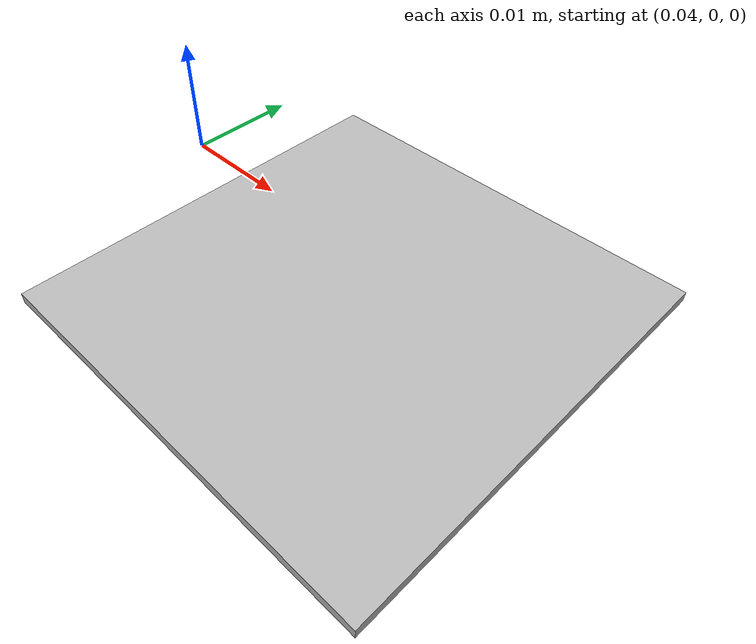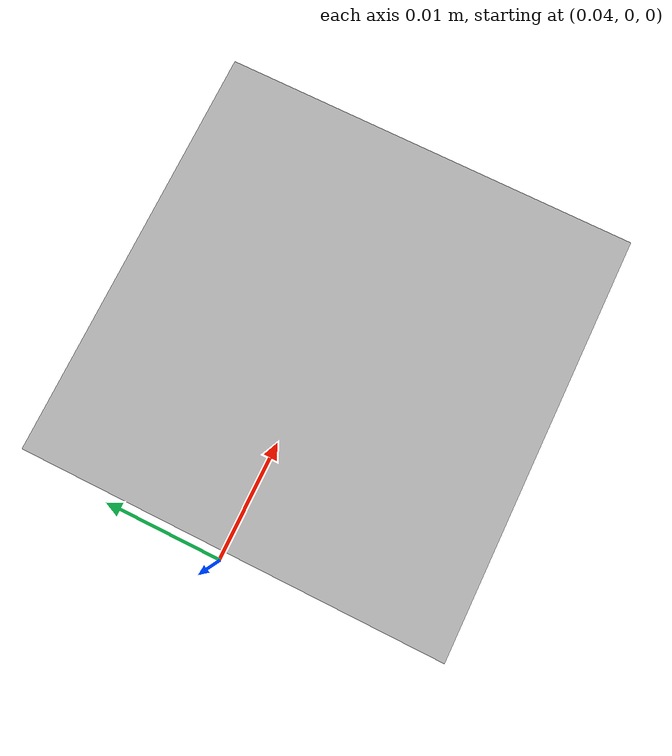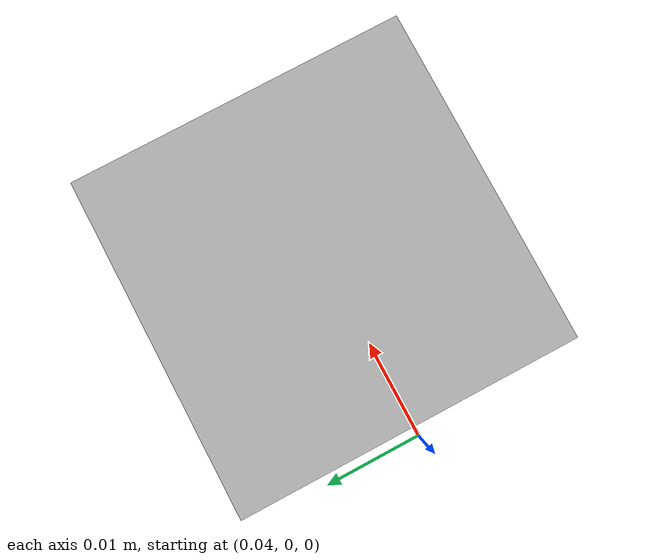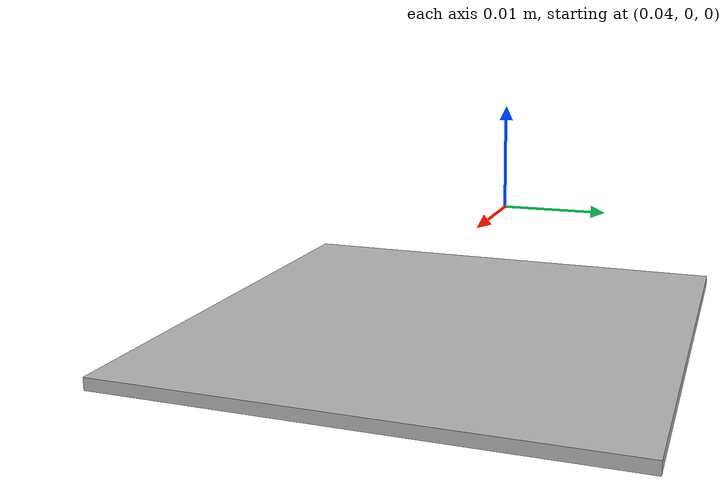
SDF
<?xml version='1.0'?>
<sdf version='1.6'>
  <model name='marker'>

    <link name='link'>
      <pose>0.06 0.0 -0.006 1.57079632 0.0 0.0</pose>
      <gravity>0</gravity>
      <visual name="visual">
        <pose>0.0 0.0 0.0 0.0 0.0 0.0</pose>
        <geometry>
          <box>
            <size>0.04 0.001 0.04</size>
          </box>
        </geometry>
        <material>
          <script>
            <name>Gazebo/aruco-123</name>
            <uri>file://media/materials/scripts/aruco.material</uri>
          </script>
        </material>
      </visual>
    </link>
    <static>0</static>
    <allow_auto_disable>1</allow_auto_disable>
  </model>
</sdf>
